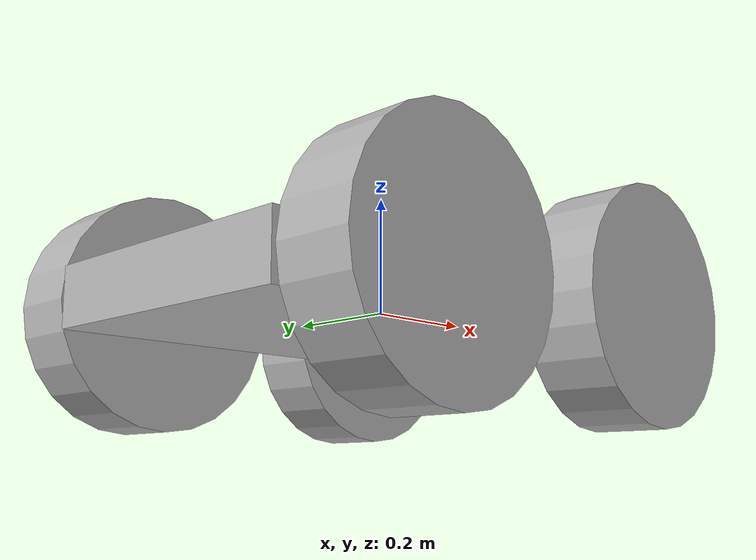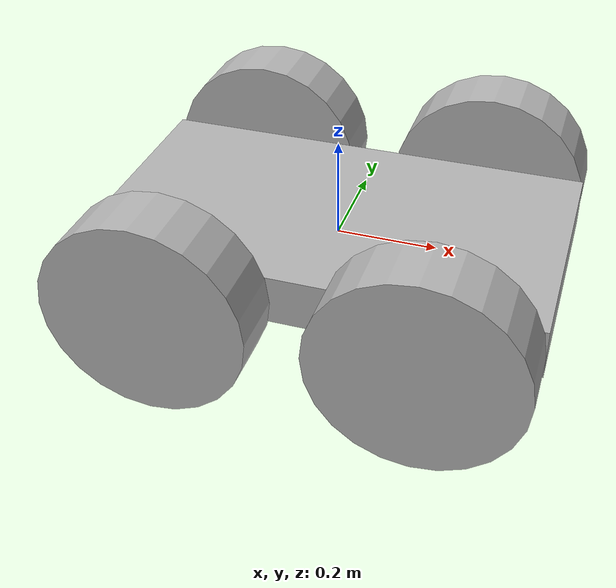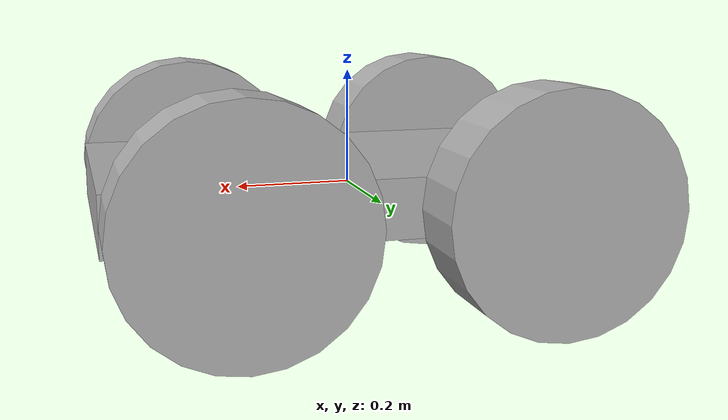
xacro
<?xml version="1.0" ?>
<robot name="dummy_bot" xmlns:xacro="http://www.ros.org/wiki/xacro">

<xacro:property name="PI" value="3.1415926535897931"/>

<xacro:property name="chassisHeight" value="0.1"/>
<xacro:property name="chassisLength" value="0.9"/>
<xacro:property name="chassisWidth" value="0.5"/>
<xacro:property name="chassisMass" value="50.0"/>

<xacro:property name="wheelWidth" value="0.125"/>
<xacro:property name="wheelRadius" value="0.2"/>
<xacro:property name="wheelMass" value="5.0"/>

<xacro:macro name="box_inertia" params="m x y z">
  <inertia  ixx="${m*(y*y+z*z)/12}" ixy = "0" ixz = "0"
    iyy="${m*(x*x+z*z)/12}" iyz = "0"
    izz="${m*(x*x+z*z)/12}"
  />
</xacro:macro>

<xacro:macro name="cylinder_inertia" params="m r h">
  <inertia  ixx="${m*(3*r*r+h*h)/12}" ixy = "0" ixz = "0"
    iyy="${m*(3*r*r+h*h)/12}" iyz = "0"
    izz="${m*r*r/2}"
  />
</xacro:macro>

<!-- NOTE: STL files don't work in gazebo with binary encoding, try ASCII instead -->

<xacro:include filename="$(find lunabot_description)/urdf/materials.xacro" />
<link name="base_link">
  <inertial>
    <origin rpy="0 0 0" xyz="0 0 0"/>
    <mass value="${chassisMass}"/>
    <xacro:box_inertia m="${chassisMass}" x="${chassisLength}" y="${chassisWidth}" z="${chassisHeight}"/>
  </inertial>
  <visual>
    <origin rpy="0 0 0" xyz="0 0 0"/>
    <geometry>
      <box size="${chassisLength} ${chassisWidth} ${chassisHeight}"/>
    </geometry>
    <material name="silver"/>
  </visual>
  <collision>
    <origin rpy="0 0 0" xyz="0 0 0"/>
    <geometry>
      <box size="${chassisLength} ${chassisWidth} ${chassisHeight}"/>
    </geometry>
  </collision>
</link>

<!-- wheel macro -->
<xacro:macro name="wheel" params="name x y">
  <link name="${name}">
    <inertial>
      <origin xyz="0 0 0"/>
      <mass value="${wheelMass}"/>
      <xacro:cylinder_inertia m="${wheelMass}" r="${wheelRadius}" h="${wheelWidth}"/>
    </inertial>
    <visual>
      <origin rpy="1.5708 0 0" xyz="0 0 0"/>
      <geometry><cylinder radius="${wheelRadius}" length="${wheelWidth}"/></geometry>
      <material name="silver"/>
    </visual>
    <collision>
      <origin rpy="1.5708 0 0" xyz="0 0 0"/>
      <geometry><cylinder radius="${wheelRadius}" length="${wheelWidth}"/></geometry>
    </collision>
  </link>

  <joint name="${name}_rev" type="continuous">
    <origin rpy="0 0 0" xyz="${x} ${y} 0"/>
    <parent link="base_link"/>
    <child link="${name}"/>
    <axis xyz="0 1 0"/>
    <limit effort="10.0" velocity="100.0"/>
  </joint>
</xacro:macro>

<!-- Instantiate wheels -->
<xacro:wheel name="left_front"  x="0.25" y="0.32"/>
<xacro:wheel name="left_back"   x="-0.25" y="0.32"/>
<xacro:wheel name="right_front" x="0.25" y="-0.32"/>
<xacro:wheel name="right_back"  x="-0.25" y="-0.32"/>

<ros2_control name="GazeboSystem" type="system">
  <hardware>
    <plugin>gazebo_ros2_control/GazeboSystem</plugin>
  </hardware>
  <joint name="right_front_rev">
    <command_interface name="velocity"/>
    <state_interface name="position"/>
    <state_interface name="velocity"/>
    <state_interface name="effort"/>
  </joint>
  <joint name="left_front_rev">
    <command_interface name="velocity"/>
    <state_interface name="position"/>
    <state_interface name="velocity"/>
    <state_interface name="effort"/>
  </joint>
  <joint name="right_back_rev">
    <command_interface name="velocity"/>
    <state_interface name="position"/>
    <state_interface name="velocity"/>
    <state_interface name="effort"/>
  </joint>
  <joint name="left_back_rev">
    <command_interface name="velocity"/>
    <state_interface name="position"/>
    <state_interface name="velocity"/>
    <state_interface name="effort"/>
  </joint>
</ros2_control>

<!-- Transmissions -->
<xacro:macro name="transmission" params="joint_name">
  <transmission name="${joint_name}_trans">
    <type>transmission_interface/SimpleTransmission</type>
    <joint name="${joint_name}">
      <hardwareInterface>hardware_interface/VelocityJointInterface</hardwareInterface>
    </joint>
    <actuator name="${joint_name}_motor">
      <hardwareInterface>hardware_interface/VelocityJointInterface</hardwareInterface>
      <mechanicalReduction>1.0</mechanicalReduction>
    </actuator>
  </transmission>
</xacro:macro>

<!-- friction -->
<xacro:macro name="wheel_friction" params="name">
  <gazebo reference="${name}">
    <mu1>1.0</mu1>
    <mu2>1.0</mu2>
    <joint><provideFeedback>true</provideFeedback></joint>
  </gazebo>
</xacro:macro>

<gazebo>
  <plugin filename="libgazebo_ros2_control.so" name="gazebo_ros2_control">
    <parameters>$(find mining_arena_gazebo)/config/diff_drive_controller.yaml</parameters>
  </plugin>
</gazebo>

</robot>

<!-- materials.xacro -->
<robot name="dummy_bot" xmlns:xacro="http://www.ros.org/wiki/xacro" >

<material name="silver">
  <color rgba="0.700 0.700 0.700 1.000"/>
</material>

</robot>
